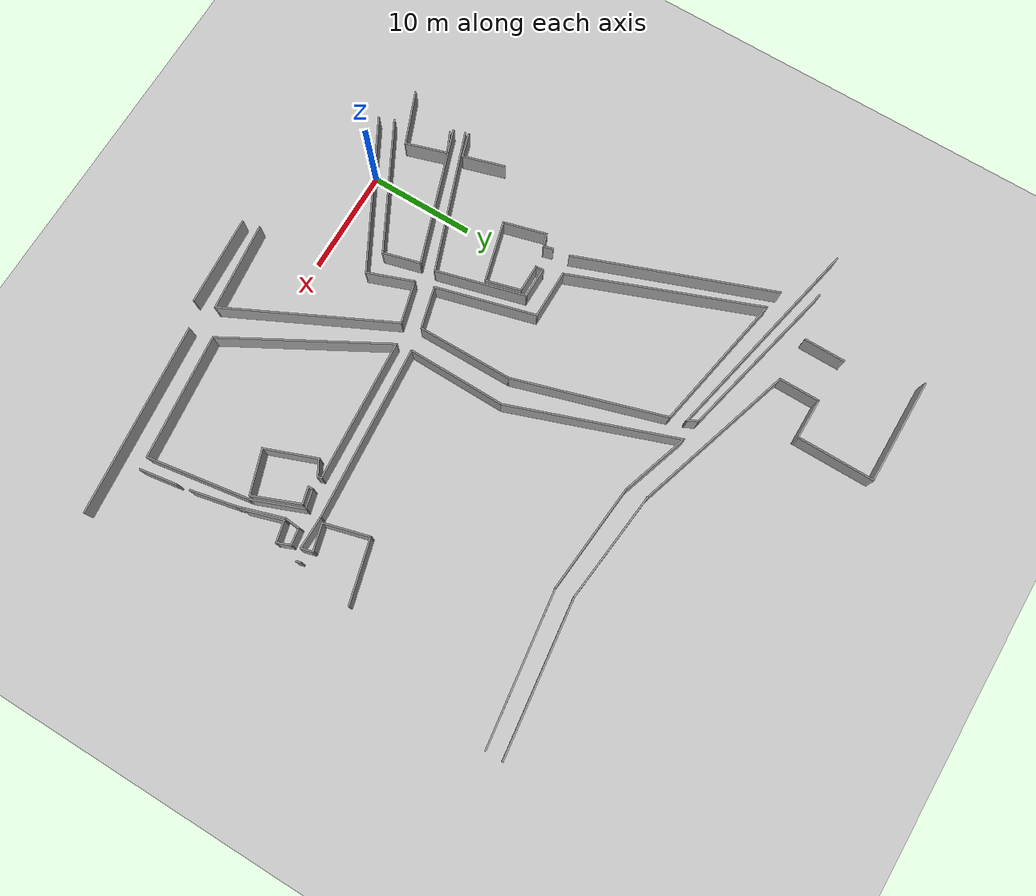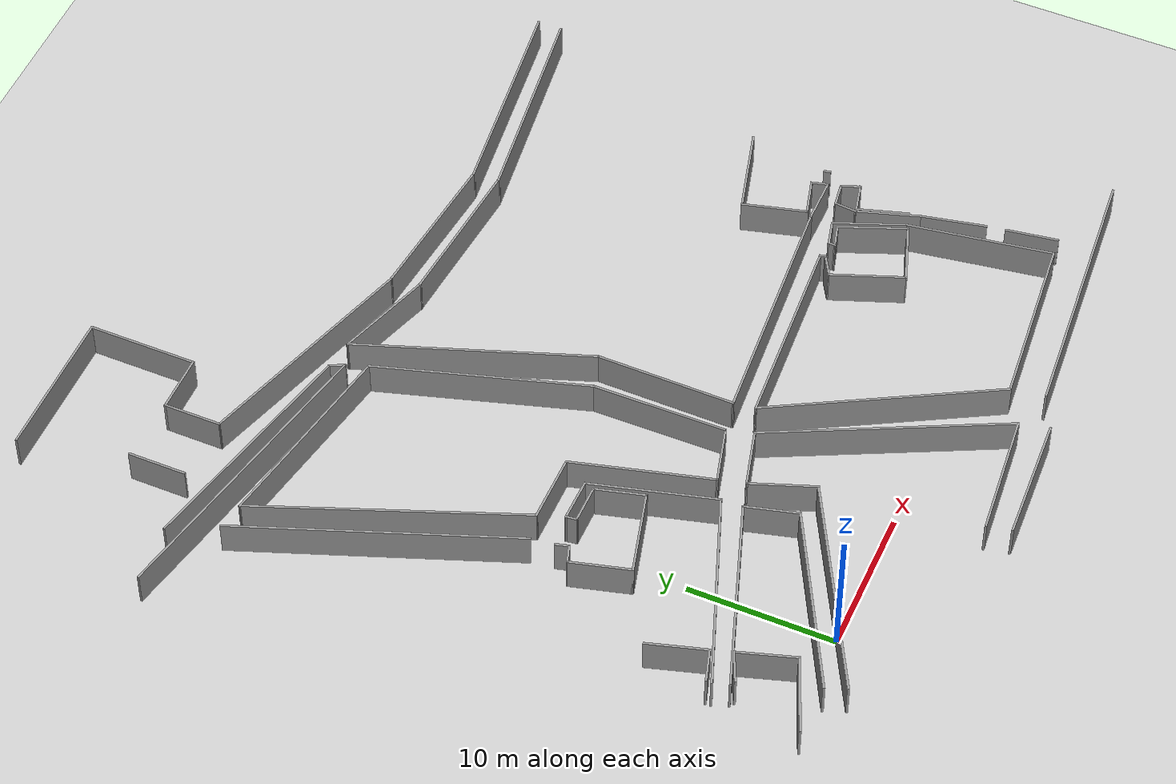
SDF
<sdf version="1.7">
 <world name="default">
  <include><uri>model://sun</uri></include>
  <include><uri>model://ground_plane</uri></include>
  <model name="final_max_v1">
   <pose>-2.52311 0.669104 0 0 -0 0</pose>
   <link name="Wall_112">
    <collision name="Wall_112_Collision">
     <geometry><box><size>4 0.15 2.5</size></box></geometry>
     <pose>0 0 1.25 0 -0 0</pose>
    </collision>
    <visual name="Wall_112_Visual">
     <pose>0 0 1.25 0 -0 0</pose>
     <geometry><box><size>4 0.15 2.5</size></box></geometry>
     <material>
      <script><uri>file://media/materials/scripts/gazebo.material</uri><name>Gazebo/Grey</name></script>
      <ambient>1 1 1 1</ambient>
     </material>
     <meta><layer>0</layer></meta>
    </visual>
    <pose>-3.46937 43.0764 0 0 -0 1.5708</pose>
   </link>
   <link name="Wall_115">
    <collision name="Wall_115_Collision">
     <geometry><box><size>10.25 0.15 2.5</size></box></geometry>
     <pose>0 0 1.25 0 -0 0</pose>
    </collision>
    <visual name="Wall_115_Visual">
     <pose>0 0 1.25 0 -0 0</pose>
     <geometry><box><size>10.25 0.15 2.5</size></box></geometry>
     <material>
      <script><uri>file://media/materials/scripts/gazebo.material</uri><name>Gazebo/Grey</name></script>
      <ambient>1 1 1 1</ambient>
     </material>
     <meta><layer>0</layer></meta>
    </visual>
    <pose>-0.269373 52.1014 0 0 -0 0</pose>
   </link>
   <link name="Wall_116">
    <collision name="Wall_116_Collision">
     <geometry><box><size>7.5 0.15 2.5</size></box></geometry>
     <pose>0 0 1.25 0 -0 0</pose>
    </collision>
    <visual name="Wall_116_Visual">
     <pose>0 0 1.25 0 -0 0</pose>
     <geometry><box><size>7.5 0.15 2.5</size></box></geometry>
     <material>
      <script><uri>file://media/materials/scripts/gazebo.material</uri><name>Gazebo/Grey</name></script>
      <ambient>1 1 1 1</ambient>
     </material>
     <meta><layer>0</layer></meta>
    </visual>
    <pose>4.78063 48.4264 0 0 -0 -1.5708</pose>
   </link>
   <link name="Wall_117">
    <collision name="Wall_117_Collision">
     <geometry><box><size>4 0.15 2.5</size></box></geometry>
     <pose>0 0 1.25 0 -0 0</pose>
    </collision>
    <visual name="Wall_117_Visual">
     <pose>0 0 1.25 0 -0 0</pose>
     <geometry><box><size>4 0.15 2.5</size></box></geometry>
     <material>
      <script><uri>file://media/materials/scripts/gazebo.material</uri><name>Gazebo/Grey</name></script>
      <ambient>1 1 1 1</ambient>
     </material>
     <meta><layer>0</layer></meta>
    </visual>
    <pose>2.85563 44.7514 0 0 -0 3.14159</pose>
   </link>
   <link name="Wall_118">
    <collision name="Wall_118_Collision">
     <geometry><box><size>4 0.15 2.5</size></box></geometry>
     <pose>0 0 1.25 0 -0 0</pose>
    </collision>
    <visual name="Wall_118_Visual">
     <pose>0 0 1.25 0 -0 0</pose>
     <geometry><box><size>4 0.15 2.5</size></box></geometry>
     <material>
      <script><uri>file://media/materials/scripts/gazebo.material</uri><name>Gazebo/Grey</name></script>
      <ambient>1 1 1 1</ambient>
     </material>
     <meta><layer>0</layer></meta>
    </visual>
    <pose>0.930627 42.8264 0 0 -0 -1.5708</pose>
   </link>
   <link name="Wall_119">
    <collision name="Wall_119_Collision">
     <geometry><box><size>16.165 0.15 2.5</size></box></geometry>
     <pose>0 0 1.25 0 -0 0</pose>
    </collision>
    <visual name="Wall_119_Visual">
     <pose>0 0 1.25 0 -0 0</pose>
     <geometry><box><size>16.165 0.15 2.5</size></box></geometry>
     <material>
      <script><uri>file://media/materials/scripts/gazebo.material</uri><name>Gazebo/Grey</name></script>
      <ambient>1 1 1 1</ambient>
     </material>
     <meta><layer>0</layer></meta>
    </visual>
    <pose>8.5693 38.4991 0 0 -0 -0.304697</pose>
   </link>
   <link name="Wall_120">
    <collision name="Wall_120_Collision">
     <geometry><box><size>10.7874 0.15 2.5</size></box></geometry>
     <pose>0 0 1.25 0 -0 0</pose>
    </collision>
    <visual name="Wall_120_Visual">
     <pose>0 0 1.25 0 -0 0</pose>
     <geometry><box><size>10.7874 0.15 2.5</size></box></geometry>
     <material>
      <script><uri>file://media/materials/scripts/gazebo.material</uri><name>Gazebo/Grey</name></script>
      <ambient>1 1 1 1</ambient>
     </material>
     <meta><layer>0</layer></meta>
    </visual>
    <pose>21.498 35.5448 0 0 -0 -0.103972</pose>
   </link>
   <link name="Wall_121">
    <collision name="Wall_121_Collision">
     <geometry><box><size>14.8821 0.15 2.5</size></box></geometry>
     <pose>0 0 1.25 0 -0 0</pose>
    </collision>
    <visual name="Wall_121_Visual">
     <pose>0 0 1.25 0 -0 0</pose>
     <geometry><box><size>14.8821 0.15 2.5</size></box></geometry>
     <material>
      <script><uri>file://media/materials/scripts/gazebo.material</uri><name>Gazebo/Grey</name></script>
      <ambient>1 1 1 1</ambient>
     </material>
     <meta><layer>0</layer></meta>
    </visual>
    <pose>34.102 35.8668 0 0 -0 0.118933</pose>
   </link>
   <link name="Wall_135">
    <collision name="Wall_135_Collision">
     <geometry><box><size>18.5413 0.15 2.5</size></box></geometry>
     <pose>0 0 1.25 0 -0 0</pose>
    </collision>
    <visual name="Wall_135_Visual">
     <pose>0 0 1.25 0 -0 0</pose>
     <geometry><box><size>18.5413 0.15 2.5</size></box></geometry>
     <material>
      <script><uri>file://media/materials/scripts/gazebo.material</uri><name>Gazebo/Grey</name></script>
      <ambient>1 1 1 1</ambient>
     </material>
     <meta><layer>0</layer></meta>
    </visual>
    <pose>33.3077 -5.59592 0 0 -0 0.095189</pose>
   </link>
   <link name="Wall_159">
    <collision name="Wall_159_Collision">
     <geometry><box><size>16.3963 0.15 2.5</size></box></geometry>
     <pose>0 0 1.25 0 -0 0</pose>
    </collision>
    <visual name="Wall_159_Visual">
     <pose>0 0 1.25 0 -0 0</pose>
     <geometry><box><size>16.3963 0.15 2.5</size></box></geometry>
     <material>
      <script><uri>file://media/materials/scripts/gazebo.material</uri><name>Gazebo/Grey</name></script>
      <ambient>1 1 1 1</ambient>
     </material>
     <meta><layer>0</layer></meta>
    </visual>
    <pose>0.113766 38.435 0 0 -0 -0.228497</pose>
   </link>
   <link name="Wall_164">
    <collision name="Wall_164_Collision">
     <geometry><box><size>9.16316 0.15 2.5</size></box></geometry>
     <pose>0 0 1.25 0 -0 0</pose>
    </collision>
    <visual name="Wall_164_Visual">
     <pose>0 0 1.25 0 -0 0</pose>
     <geometry><box><size>9.16316 0.15 2.5</size></box></geometry>
     <material>
      <script><uri>file://media/materials/scripts/gazebo.material</uri><name>Gazebo/Grey</name></script>
      <ambient>1 1 1 1</ambient>
     </material>
     <meta><layer>0</layer></meta>
    </visual>
    <pose>13.3066 15.8045 0 0 -0 -1.56262</pose>
   </link>
   <link name="Wall_167">
    <collision name="Wall_167_Collision">
     <geometry><box><size>4 0.15 2.5</size></box></geometry>
     <pose>0 0 1.25 0 -0 0</pose>
    </collision>
    <visual name="Wall_167_Visual">
     <pose>0 0 1.25 0 -0 0</pose>
     <geometry><box><size>4 0.15 2.5</size></box></geometry>
     <material>
      <script><uri>file://media/materials/scripts/gazebo.material</uri><name>Gazebo/Grey</name></script>
      <ambient>1 1 1 1</ambient>
     </material>
     <meta><layer>0</layer></meta>
    </visual>
    <pose>11.3094 10.7013 0 0 -0 0.261799</pose>
   </link>
   <link name="Wall_169">
    <collision name="Wall_169_Collision">
     <geometry><box><size>9.75 0.15 2.5</size></box></geometry>
     <pose>0 0 1.25 0 -0 0</pose>
    </collision>
    <visual name="Wall_169_Visual">
     <pose>0 0 1.25 0 -0 0</pose>
     <geometry><box><size>9.75 0.15 2.5</size></box></geometry>
     <material>
      <script><uri>file://media/materials/scripts/gazebo.material</uri><name>Gazebo/Grey</name></script>
      <ambient>1 1 1 1</ambient>
     </material>
     <meta><layer>0</layer></meta>
    </visual>
    <pose>8.20764 14.8395 0 0 -0 1.8326</pose>
   </link>
   <link name="Wall_171">
    <collision name="Wall_171_Collision">
     <geometry><box><size>4.75 0.15 2.5</size></box></geometry>
     <pose>0 0 1.25 0 -0 0</pose>
    </collision>
    <visual name="Wall_171_Visual">
     <pose>0 0 1.25 0 -0 0</pose>
     <geometry><box><size>4.75 0.15 2.5</size></box></geometry>
     <material>
      <script><uri>file://media/materials/scripts/gazebo.material</uri><name>Gazebo/Grey</name></script>
      <ambient>1 1 1 1</ambient>
     </material>
     <meta><layer>0</layer></meta>
    </visual>
    <pose>4.66531 19.476 0 0 -0 3.14159</pose>
   </link>
   <link name="Wall_191">
    <collision name="Wall_191_Collision">
     <geometry><box><size>20.8467 0.15 2.5</size></box></geometry>
     <pose>0 0 1.25 0 -0 0</pose>
    </collision>
    <visual name="Wall_191_Visual">
     <pose>0 0 1.25 0 -0 0</pose>
     <geometry><box><size>20.8467 0.15 2.5</size></box></geometry>
     <material>
      <script><uri>file://media/materials/scripts/gazebo.material</uri><name>Gazebo/Grey</name></script>
      <ambient>1 1 1 1</ambient>
     </material>
     <meta><layer>0</layer></meta>
    </visual>
    <pose>-1.63858 37.8537 0 0 -0 -0.210472</pose>
   </link>
   <link name="Wall_193">
    <collision name="Wall_193_Collision">
     <geometry><box><size>1.1617 0.15 2.5</size></box></geometry>
     <pose>0 0 1.25 0 -0 0</pose>
    </collision>
    <visual name="Wall_193_Visual">
     <pose>0 0 1.25 0 -0 0</pose>
     <geometry><box><size>1.1617 0.15 2.5</size></box></geometry>
     <material>
      <script><uri>file://media/materials/scripts/gazebo.material</uri><name>Gazebo/Grey</name></script>
      <ambient>1 1 1 1</ambient>
     </material>
     <meta><layer>0</layer></meta>
    </visual>
    <pose>8.25359 36.1433 0 0 -0 2.03799</pose>
   </link>
   <link name="Wall_211">
    <collision name="Wall_211_Collision">
     <geometry><box><size>14.7253 0.15 2.5</size></box></geometry>
     <pose>0 0 1.25 0 -0 0</pose>
    </collision>
    <visual name="Wall_211_Visual">
     <pose>0 0 1.25 0 -0 0</pose>
     <geometry><box><size>14.7253 0.15 2.5</size></box></geometry>
     <material>
      <script><uri>file://media/materials/scripts/gazebo.material</uri><name>Gazebo/Grey</name></script>
      <ambient>1 1 1 1</ambient>
     </material>
     <meta><layer>0</layer></meta>
    </visual>
    <pose>11.1463 27.2824 0 0 -0 -1.27513</pose>
   </link>
   <link name="Wall_213">
    <collision name="Wall_213_Collision">
     <geometry><box><size>9.53445 0.15 2.5</size></box></geometry>
     <pose>0 0 1.25 0 -0 0</pose>
    </collision>
    <visual name="Wall_213_Visual">
     <pose>0 0 1.25 0 -0 0</pose>
     <geometry><box><size>9.53445 0.15 2.5</size></box></geometry>
     <material>
      <script><uri>file://media/materials/scripts/gazebo.material</uri><name>Gazebo/Grey</name></script>
      <ambient>1 1 1 1</ambient>
     </material>
     <meta><layer>0</layer></meta>
    </visual>
    <pose>15.6009 16.3138 0 0 -0 1.56099</pose>
   </link>
   <link name="Wall_215">
    <collision name="Wall_215_Collision">
     <geometry><box><size>16.389 0.15 2.5</size></box></geometry>
     <pose>0 0 1.25 0 -0 0</pose>
    </collision>
    <visual name="Wall_215_Visual">
     <pose>0 0 1.25 0 -0 0</pose>
     <geometry><box><size>16.389 0.15 2.5</size></box></geometry>
     <material>
      <script><uri>file://media/materials/scripts/gazebo.material</uri><name>Gazebo/Grey</name></script>
      <ambient>1 1 1 1</ambient>
     </material>
     <meta><layer>0</layer></meta>
    </visual>
    <pose>12.8869 28.6418 0 0 -0 1.91763</pose>
   </link>
   <link name="Wall_217">
    <collision name="Wall_217_Collision">
     <geometry><box><size>6.92872 0.15 2.5</size></box></geometry>
     <pose>0 0 1.25 0 -0 0</pose>
    </collision>
    <visual name="Wall_217_Visual">
     <pose>0 0 1.25 0 -0 0</pose>
     <geometry><box><size>6.92872 0.15 2.5</size></box></geometry>
     <material>
      <script><uri>file://media/materials/scripts/gazebo.material</uri><name>Gazebo/Grey</name></script>
      <ambient>1 1 1 1</ambient>
     </material>
     <meta><layer>0</layer></meta>
    </visual>
    <pose>13.3469 35.2198 0 0 -0 -0.317459</pose>
   </link>
   <link name="Wall_219">
    <collision name="Wall_219_Collision">
     <geometry><box><size>10.5866 0.15 2.5</size></box></geometry>
     <pose>0 0 1.25 0 -0 0</pose>
    </collision>
    <visual name="Wall_219_Visual">
     <pose>0 0 1.25 0 -0 0</pose>
     <geometry><box><size>10.5866 0.15 2.5</size></box></geometry>
     <material>
      <script><uri>file://media/materials/scripts/gazebo.material</uri><name>Gazebo/Grey</name></script>
      <ambient>1 1 1 1</ambient>
     </material>
     <meta><layer>0</layer></meta>
    </visual>
    <pose>21.7649 33.7018 0 0 -0 -0.088266</pose>
   </link>
   <link name="Wall_221">
    <collision name="Wall_221_Collision">
     <geometry><box><size>14.7107 0.15 2.5</size></box></geometry>
     <pose>0 0 1.25 0 -0 0</pose>
    </collision>
    <visual name="Wall_221_Visual">
     <pose>0 0 1.25 0 -0 0</pose>
     <geometry><box><size>14.7107 0.15 2.5</size></box></geometry>
     <material>
      <script><uri>file://media/materials/scripts/gazebo.material</uri><name>Gazebo/Grey</name></script>
      <ambient>1 1 1 1</ambient>
     </material>
     <meta><layer>0</layer></meta>
    </visual>
    <pose>34.1849 34.1618 0 0 -0 0.126706</pose>
   </link>
   <link name="Wall_233">
    <collision name="Wall_233_Collision">
     <geometry><box><size>12.0422 0.15 2.5</size></box></geometry>
     <pose>0 0 1.25 0 -0 0</pose>
    </collision>
    <visual name="Wall_233_Visual">
     <pose>0 0 1.25 0 -0 0</pose>
     <geometry><box><size>12.0422 0.15 2.5</size></box></geometry>
     <material>
      <script><uri>file://media/materials/scripts/gazebo.material</uri><name>Gazebo/Grey</name></script>
      <ambient>1 1 1 1</ambient>
     </material>
     <meta><layer>0</layer></meta>
    </visual>
    <pose>29.7422 -3.55323 0 0 -0 0.105489</pose>
   </link>
   <link name="Wall_234">
    <collision name="Wall_234_Collision">
     <geometry><box><size>10.0086 0.15 2.5</size></box></geometry>
     <pose>0 0 1.25 0 -0 0</pose>
    </collision>
    <visual name="Wall_234_Visual">
     <pose>0 0 1.25 0 -0 0</pose>
     <geometry><box><size>10.0086 0.15 2.5</size></box></geometry>
     <material>
      <script><uri>file://media/materials/scripts/gazebo.material</uri><name>Gazebo/Grey</name></script>
      <ambient>1 1 1 1</ambient>
     </material>
     <meta><layer>0</layer></meta>
    </visual>
    <pose>34.8901 1.94242 0 0 -0 1.72666</pose>
   </link>
   <link name="Wall_235">
    <collision name="Wall_235_Collision">
     <geometry><box><size>5.08472 0.15 2.5</size></box></geometry>
     <pose>0 0 1.25 0 -0 0</pose>
    </collision>
    <visual name="Wall_235_Visual">
     <pose>0 0 1.25 0 -0 0</pose>
     <geometry><box><size>5.08472 0.15 2.5</size></box></geometry>
     <material>
      <script><uri>file://media/materials/scripts/gazebo.material</uri><name>Gazebo/Grey</name></script>
      <ambient>1 1 1 1</ambient>
     </material>
     <meta><layer>0</layer></meta>
    </visual>
    <pose>33.2205 9.10764 0 0 -0 1.94607</pose>
   </link>
   <link name="Wall_237">
    <collision name="Wall_237_Collision">
     <geometry><box><size>16.5284 0.15 2.5</size></box></geometry>
     <pose>0 0 1.25 0 -0 0</pose>
    </collision>
    <visual name="Wall_237_Visual">
     <pose>0 0 1.25 0 -0 0</pose>
     <geometry><box><size>16.5284 0.15 2.5</size></box></geometry>
     <material>
      <script><uri>file://media/materials/scripts/gazebo.material</uri><name>Gazebo/Grey</name></script>
      <ambient>1 1 1 1</ambient>
     </material>
     <meta><layer>0</layer></meta>
    </visual>
    <pose>19.7248 2.9859 0 0 -0 -1.06535</pose>
   </link>
   <link name="Wall_240">
    <collision name="Wall_240_Collision">
     <geometry><box><size>16.9278 0.15 2.5</size></box></geometry>
     <pose>0 0 1.25 0 -0 0</pose>
    </collision>
    <visual name="Wall_240_Visual">
     <pose>0 0 1.25 0 -0 0</pose>
     <geometry><box><size>16.9278 0.15 2.5</size></box></geometry>
     <material>
      <script><uri>file://media/materials/scripts/gazebo.material</uri><name>Gazebo/Grey</name></script>
      <ambient>1 1 1 1</ambient>
     </material>
     <meta><layer>0</layer></meta>
    </visual>
    <pose>23.9191 12.2642 0 0 -0 0.076646</pose>
   </link>
   <link name="Wall_241">
    <collision name="Wall_241_Collision">
     <geometry><box><size>3.25 0.15 2.5</size></box></geometry>
     <pose>0 0 1.25 0 -0 0</pose>
    </collision>
    <visual name="Wall_241_Visual">
     <pose>0 0 1.25 0 -0 0</pose>
     <geometry><box><size>3.25 0.15 2.5</size></box></geometry>
     <material>
      <script><uri>file://media/materials/scripts/gazebo.material</uri><name>Gazebo/Grey</name></script>
      <ambient>1 1 1 1</ambient>
     </material>
     <meta><layer>0</layer></meta>
    </visual>
    <pose>33.8334 12.9065 0 0 -0 0</pose>
   </link>
   <link name="Wall_242">
    <collision name="Wall_242_Collision">
     <geometry><box><size>1.25 0.15 2.5</size></box></geometry>
     <pose>0 0 1.25 0 -0 0</pose>
    </collision>
    <visual name="Wall_242_Visual">
     <pose>0 0 1.25 0 -0 0</pose>
     <geometry><box><size>1.25 0.15 2.5</size></box></geometry>
     <material>
      <script><uri>file://media/materials/scripts/gazebo.material</uri><name>Gazebo/Grey</name></script>
      <ambient>1 1 1 1</ambient>
     </material>
     <meta><layer>0</layer></meta>
    </visual>
    <pose>35.241 13.4378 0 0 -0 1.8326</pose>
   </link>
   <link name="Wall_243">
    <collision name="Wall_243_Collision">
     <geometry><box><size>2.75 0.15 2.5</size></box></geometry>
     <pose>0 0 1.25 0 -0 0</pose>
    </collision>
    <visual name="Wall_243_Visual">
     <pose>0 0 1.25 0 -0 0</pose>
     <geometry><box><size>2.75 0.15 2.5</size></box></geometry>
     <material>
      <script><uri>file://media/materials/scripts/gazebo.material</uri><name>Gazebo/Grey</name></script>
      <ambient>1 1 1 1</ambient>
     </material>
     <meta><layer>0</layer></meta>
    </visual>
    <pose>33.843 13.6326 0 0 -0 -2.87979</pose>
   </link>
   <link name="Wall_244">
    <collision name="Wall_244_Collision">
     <geometry><box><size>4.5 0.15 2.5</size></box></geometry>
     <pose>0 0 1.25 0 -0 0</pose>
    </collision>
    <visual name="Wall_244_Visual">
     <pose>0 0 1.25 0 -0 0</pose>
     <geometry><box><size>4.5 0.15 2.5</size></box></geometry>
     <material>
      <script><uri>file://media/materials/scripts/gazebo.material</uri><name>Gazebo/Grey</name></script>
      <ambient>1 1 1 1</ambient>
     </material>
     <meta><layer>0</layer></meta>
    </visual>
    <pose>32.0243 15.397 0 0 -0 1.8326</pose>
   </link>
   <link name="Wall_245">
    <collision name="Wall_245_Collision">
     <geometry><box><size>6.25 0.15 2.5</size></box></geometry>
     <pose>0 0 1.25 0 -0 0</pose>
    </collision>
    <visual name="Wall_245_Visual">
     <pose>0 0 1.25 0 -0 0</pose>
     <geometry><box><size>6.25 0.15 2.5</size></box></geometry>
     <material>
      <script><uri>file://media/materials/scripts/gazebo.material</uri><name>Gazebo/Grey</name></script>
      <ambient>1 1 1 1</ambient>
     </material>
     <meta><layer>0</layer></meta>
    </visual>
    <pose>34.4075 18.2873 0 0 -0 0.261799</pose>
   </link>
   <link name="Wall_248">
    <collision name="Wall_248_Collision">
     <geometry><box><size>0.5 0.15 2.5</size></box></geometry>
     <pose>0 0 1.25 0 -0 0</pose>
    </collision>
    <visual name="Wall_248_Visual">
     <pose>0 0 1.25 0 -0 0</pose>
     <geometry><box><size>0.5 0.15 2.5</size></box></geometry>
     <material>
      <script><uri>file://media/materials/scripts/gazebo.material</uri><name>Gazebo/Grey</name></script>
      <ambient>1 1 1 1</ambient>
     </material>
     <meta><layer>0</layer></meta>
    </visual>
    <pose>36.4489 13.3732 0 0 -0 -1.309</pose>
   </link>
   <link name="Wall_293">
    <collision name="Wall_293_Collision">
     <geometry><box><size>3.61267 0.15 2.5</size></box></geometry>
     <pose>0 0 1.25 0 -0 0</pose>
    </collision>
    <visual name="Wall_293_Visual">
     <pose>0 0 1.25 0 -0 0</pose>
     <geometry><box><size>3.61267 0.15 2.5</size></box></geometry>
     <material>
      <script><uri>file://media/materials/scripts/gazebo.material</uri><name>Gazebo/Grey</name></script>
      <ambient>1 1 1 1</ambient>
     </material>
     <meta><layer>0</layer></meta>
    </visual>
    <pose>34.5878 8.7186 0 0 -0 1.87057</pose>
   </link>
   <link name="Wall_294">
    <collision name="Wall_294_Collision">
     <geometry><box><size>2.19244 0.15 2.5</size></box></geometry>
     <pose>0 0 1.25 0 -0 0</pose>
    </collision>
    <visual name="Wall_294_Visual">
     <pose>0 0 1.25 0 -0 0</pose>
     <geometry><box><size>2.19244 0.15 2.5</size></box></geometry>
     <material>
      <script><uri>file://media/materials/scripts/gazebo.material</uri><name>Gazebo/Grey</name></script>
      <ambient>1 1 1 1</ambient>
     </material>
     <meta><layer>0</layer></meta>
    </visual>
    <pose>35.069 10.6133 0 0 -0 0.237836</pose>
   </link>
   <link name="Wall_295">
    <collision name="Wall_295_Collision">
     <geometry><box><size>1.44567 0.15 2.5</size></box></geometry>
     <pose>0 0 1.25 0 -0 0</pose>
    </collision>
    <visual name="Wall_295_Visual">
     <pose>0 0 1.25 0 -0 0</pose>
     <geometry><box><size>1.44567 0.15 2.5</size></box></geometry>
     <material>
      <script><uri>file://media/materials/scripts/gazebo.material</uri><name>Gazebo/Grey</name></script>
      <ambient>1 1 1 1</ambient>
     </material>
     <meta><layer>0</layer></meta>
    </visual>
    <pose>35.8208 11.4554 0 0 -0 1.9513</pose>
   </link>
   <link name="Wall_296">
    <collision name="Wall_296_Collision">
     <geometry><box><size>1.7323 0.15 2.5</size></box></geometry>
     <pose>0 0 1.25 0 -0 0</pose>
    </collision>
    <visual name="Wall_296_Visual">
     <pose>0 0 1.25 0 -0 0</pose>
     <geometry><box><size>1.7323 0.15 2.5</size></box></geometry>
     <material>
      <script><uri>file://media/materials/scripts/gazebo.material</uri><name>Gazebo/Grey</name></script>
      <ambient>1 1 1 1</ambient>
     </material>
     <meta><layer>0</layer></meta>
    </visual>
    <pose>34.7983 11.9366 0 0 -0 -2.98894</pose>
   </link>
   <link name="Wall_297">
    <collision name="Wall_297_Collision">
     <geometry><box><size>1.5986 0.15 2.5</size></box></geometry>
     <pose>0 0 1.25 0 -0 0</pose>
    </collision>
    <visual name="Wall_297_Visual">
     <pose>0 0 1.25 0 -0 0</pose>
     <geometry><box><size>1.5986 0.15 2.5</size></box></geometry>
     <material>
      <script><uri>file://media/materials/scripts/gazebo.material</uri><name>Gazebo/Grey</name></script>
      <ambient>1 1 1 1</ambient>
     </material>
     <meta><layer>0</layer></meta>
    </visual>
    <pose>33.9562 11.0945 0 0 -0 -1.65394</pose>
   </link>
   <link name="Wall_298">
    <collision name="Wall_298_Collision">
     <geometry><box><size>4.5062 0.15 2.5</size></box></geometry>
     <pose>0 0 1.25 0 -0 0</pose>
    </collision>
    <visual name="Wall_298_Visual">
     <pose>0 0 1.25 0 -0 0</pose>
     <geometry><box><size>4.5062 0.15 2.5</size></box></geometry>
     <material>
      <script><uri>file://media/materials/scripts/gazebo.material</uri><name>Gazebo/Grey</name></script>
      <ambient>1 1 1 1</ambient>
     </material>
     <meta><layer>0</layer></meta>
    </visual>
    <pose>34.5577 8.29755 0 0 -0 -1.26215</pose>
   </link>
   <link name="Wall_309">
    <collision name="Wall_309_Collision">
     <geometry><box><size>3.61438 0.15 2.5</size></box></geometry>
     <pose>0 0 1.25 0 -0 0</pose>
    </collision>
    <visual name="Wall_309_Visual">
     <pose>0 0 1.25 0 -0 0</pose>
     <geometry><box><size>3.61438 0.15 2.5</size></box></geometry>
     <material>
      <script><uri>file://media/materials/scripts/gazebo.material</uri><name>Gazebo/Grey</name></script>
      <ambient>1 1 1 1</ambient>
     </material>
     <meta><layer>0</layer></meta>
    </visual>
    <pose>36.5953 -1.09059 0 0 -0 -1.41679</pose>
   </link>
   <link name="Wall_318">
    <collision name="Wall_318_Collision">
     <geometry><box><size>4.50017 0.15 2.5</size></box></geometry>
     <pose>0 0 1.25 0 -0 0</pose>
    </collision>
    <visual name="Wall_318_Visual">
     <pose>0 0 1.25 0 -0 0</pose>
     <geometry><box><size>4.50017 0.15 2.5</size></box></geometry>
     <material>
      <script><uri>file://media/materials/scripts/gazebo.material</uri><name>Gazebo/Grey</name></script>
      <ambient>1 1 1 1</ambient>
     </material>
     <meta><layer>0</layer></meta>
    </visual>
    <pose>35.6697 4.09443 0 0 -0 1.77936</pose>
   </link>
   <link name="Wall_335">
    <collision name="Wall_335_Collision">
     <geometry><box><size>4.16566 0.15 2.5</size></box></geometry>
     <pose>0 0 1.25 0 -0 0</pose>
    </collision>
    <visual name="Wall_335_Visual">
     <pose>0 0 1.25 0 -0 0</pose>
     <geometry><box><size>4.16566 0.15 2.5</size></box></geometry>
     <material>
      <script><uri>file://media/materials/scripts/gazebo.material</uri><name>Gazebo/Grey</name></script>
      <ambient>1 1 1 1</ambient>
     </material>
     <meta><layer>0</layer></meta>
    </visual>
    <pose>-3.35798 7.58284 0 0 -0 -1.28221</pose>
   </link>
   <link name="Wall_336">
    <collision name="Wall_336_Collision">
     <geometry><box><size>2.41423 0.15 2.5</size></box></geometry>
     <pose>0 0 1.25 0 -0 0</pose>
    </collision>
    <visual name="Wall_336_Visual">
     <pose>0 0 1.25 0 -0 0</pose>
     <geometry><box><size>2.41423 0.15 2.5</size></box></geometry>
     <material>
      <script><uri>file://media/materials/scripts/gazebo.material</uri><name>Gazebo/Grey</name></script>
      <ambient>1 1 1 1</ambient>
     </material>
     <meta><layer>0</layer></meta>
    </visual>
    <pose>-3.86926 5.32722 0 0 -0 -2.84505</pose>
   </link>
   <link name="Wall_344">
    <collision name="Wall_344_Collision">
     <geometry><box><size>5.45315 0.15 2.5</size></box></geometry>
     <pose>0 0 1.25 0 -0 0</pose>
    </collision>
    <visual name="Wall_344_Visual">
     <pose>0 0 1.25 0 -0 0</pose>
     <geometry><box><size>5.45315 0.15 2.5</size></box></geometry>
     <material>
      <script><uri>file://media/materials/scripts/gazebo.material</uri><name>Gazebo/Grey</name></script>
      <ambient>1 1 1 1</ambient>
     </material>
     <meta><layer>0</layer></meta>
    </visual>
    <pose>-3.5957 -0.553775 0 0 -0 0.384169</pose>
   </link>
   <link name="Wall_345">
    <collision name="Wall_345_Collision">
     <geometry><box><size>4.15324 0.15 2.5</size></box></geometry>
     <pose>0 0 1.25 0 -0 0</pose>
    </collision>
    <visual name="Wall_345_Visual">
     <pose>0 0 1.25 0 -0 0</pose>
     <geometry><box><size>4.15324 0.15 2.5</size></box></geometry>
     <material>
      <script><uri>file://media/materials/scripts/gazebo.material</uri><name>Gazebo/Grey</name></script>
      <ambient>1 1 1 1</ambient>
     </material>
     <meta><layer>0</layer></meta>
    </visual>
    <pose>-1.7389 2.34911 0 0 -0 1.87602</pose>
   </link>
   <link name="Wall_354">
    <collision name="Wall_354_Collision">
     <geometry><box><size>2.27975 0.15 2.5</size></box></geometry>
     <pose>0 0 1.25 0 -0 0</pose>
    </collision>
    <visual name="Wall_354_Visual">
     <pose>0 0 1.25 0 -0 0</pose>
     <geometry><box><size>2.27975 0.15 2.5</size></box></geometry>
     <material>
      <script><uri>file://media/materials/scripts/gazebo.material</uri><name>Gazebo/Grey</name></script>
      <ambient>1 1 1 1</ambient>
     </material>
     <meta><layer>0</layer></meta>
    </visual>
    <pose>-3.30803 3.81363 0 0 -0 -2.7109</pose>
   </link>
   <link name="Wall_372">
    <collision name="Wall_372_Collision">
     <geometry><box><size>14.0321 0.15 2.5</size></box></geometry>
     <pose>0 0 1.25 0 -0 0</pose>
    </collision>
    <visual name="Wall_372_Visual">
     <pose>0 0 1.25 0 -0 0</pose>
     <geometry><box><size>14.0321 0.15 2.5</size></box></geometry>
     <material>
      <script><uri>file://media/materials/scripts/gazebo.material</uri><name>Gazebo/Grey</name></script>
      <ambient>1 1 1 1</ambient>
     </material>
     <meta><layer>0</layer></meta>
    </visual>
    <pose>1.57832 7.01954 0 0 -0 0.351268</pose>
   </link>
   <link name="Wall_374">
    <collision name="Wall_374_Collision">
     <geometry><box><size>8.75 0.15 2.5</size></box></geometry>
     <pose>0 0 1.25 0 -0 0</pose>
    </collision>
    <visual name="Wall_374_Visual">
     <pose>0 0 1.25 0 -0 0</pose>
     <geometry><box><size>8.75 0.15 2.5</size></box></geometry>
     <material>
      <script><uri>file://media/materials/scripts/gazebo.material</uri><name>Gazebo/Grey</name></script>
      <ambient>1 1 1 1</ambient>
     </material>
     <meta><layer>0</layer></meta>
    </visual>
    <pose>6.98261 13.5614 0 0 -0 1.8326</pose>
   </link>
   <link name="Wall_378">
    <collision name="Wall_378_Collision">
     <geometry><box><size>18.7028 0.15 2.5</size></box></geometry>
     <pose>0 0 1.25 0 -0 0</pose>
    </collision>
    <visual name="Wall_378_Visual">
     <pose>0 0 1.25 0 -0 0</pose>
     <geometry><box><size>18.7028 0.15 2.5</size></box></geometry>
     <material>
      <script><uri>file://media/materials/scripts/gazebo.material</uri><name>Gazebo/Grey</name></script>
      <ambient>1 1 1 1</ambient>
     </material>
     <meta><layer>0</layer></meta>
    </visual>
    <pose>-1.00084 28.1201 0 0 -0 1.94215</pose>
   </link>
   <link name="Wall_379">
    <collision name="Wall_379_Collision">
     <geometry><box><size>13.7731 0.15 2.5</size></box></geometry>
     <pose>0 0 1.25 0 -0 0</pose>
    </collision>
    <visual name="Wall_379_Visual">
     <pose>0 0 1.25 0 -0 0</pose>
     <geometry><box><size>13.7731 0.15 2.5</size></box></geometry>
     <material>
      <script><uri>file://media/materials/scripts/gazebo.material</uri><name>Gazebo/Grey</name></script>
      <ambient>1 1 1 1</ambient>
     </material>
     <meta><layer>0</layer></meta>
    </visual>
    <pose>2.32793 35.509 0 0 -0 -0.18533</pose>
   </link>
   <link name="Wall_383">
    <collision name="Wall_383_Collision">
     <geometry><box><size>19.4012 0.15 2.5</size></box></geometry>
     <pose>0 0 1.25 0 -0 0</pose>
    </collision>
    <visual name="Wall_383_Visual">
     <pose>0 0 1.25 0 -0 0</pose>
     <geometry><box><size>19.4012 0.15 2.5</size></box></geometry>
     <material>
      <script><uri>file://media/materials/scripts/gazebo.material</uri><name>Gazebo/Grey</name></script>
      <ambient>1 1 1 1</ambient>
     </material>
     <meta><layer>0</layer></meta>
    </visual>
    <pose>-2.84755 28.1393 0 0 -0 -1.21147</pose>
   </link>
   <link name="Wall_453">
    <collision name="Wall_453_Collision">
     <geometry><box><size>13.3527 0.15 2.5</size></box></geometry>
     <pose>0 0 1.25 0 -0 0</pose>
    </collision>
    <visual name="Wall_453_Visual">
     <pose>0 0 1.25 0 -0 0</pose>
     <geometry><box><size>13.3527 0.15 2.5</size></box></geometry>
     <material>
      <script><uri>file://media/materials/scripts/gazebo.material</uri><name>Gazebo/Grey</name></script>
      <ambient>1 1 1 1</ambient>
     </material>
     <meta><layer>0</layer></meta>
    </visual>
    <pose>3.23877 1.36715 0 0 -0 0.485432</pose>
   </link>
   <link name="Wall_454">
    <collision name="Wall_454_Collision">
     <geometry><box><size>3.75 0.15 2.5</size></box></geometry>
     <pose>0 0 1.25 0 -0 0</pose>
    </collision>
    <visual name="Wall_454_Visual">
     <pose>0 0 1.25 0 -0 0</pose>
     <geometry><box><size>3.75 0.15 2.5</size></box></geometry>
     <material>
      <script><uri>file://media/materials/scripts/gazebo.material</uri><name>Gazebo/Grey</name></script>
      <ambient>1 1 1 1</ambient>
     </material>
     <meta><layer>0</layer></meta>
    </visual>
    <pose>8.61161 6.18595 0 0 -0 1.8326</pose>
   </link>
   <link name="Wall_455">
    <collision name="Wall_455_Collision">
     <geometry><box><size>13.5834 0.15 2.5</size></box></geometry>
     <pose>0 0 1.25 0 -0 0</pose>
    </collision>
    <visual name="Wall_455_Visual">
     <pose>0 0 1.25 0 -0 0</pose>
     <geometry><box><size>13.5834 0.15 2.5</size></box></geometry>
     <material>
      <script><uri>file://media/materials/scripts/gazebo.material</uri><name>Gazebo/Grey</name></script>
      <ambient>1 1 1 1</ambient>
     </material>
     <meta><layer>0</layer></meta>
    </visual>
    <pose>1.79257 5.74485 0 0 -0 -2.81108</pose>
   </link>
   <link name="Wall_473">
    <collision name="Wall_473_Collision">
     <geometry><box><size>4.25 0.15 2.5</size></box></geometry>
     <pose>0 0 1.25 0 -0 0</pose>
    </collision>
    <visual name="Wall_473_Visual">
     <pose>0 0 1.25 0 -0 0</pose>
     <geometry><box><size>4.25 0.15 2.5</size></box></geometry>
     <material>
      <script><uri>file://media/materials/scripts/gazebo.material</uri><name>Gazebo/Grey</name></script>
      <ambient>1 1 1 1</ambient>
     </material>
     <meta><layer>0</layer></meta>
    </visual>
    <pose>11.8924 8.9301 0 0 -0 0.261799</pose>
   </link>
   <link name="Wall_475">
    <collision name="Wall_475_Collision">
     <geometry><box><size>16.9261 0.15 2.5</size></box></geometry>
     <pose>0 0 1.25 0 -0 0</pose>
    </collision>
    <visual name="Wall_475_Visual">
     <pose>0 0 1.25 0 -0 0</pose>
     <geometry><box><size>16.9261 0.15 2.5</size></box></geometry>
     <material>
      <script><uri>file://media/materials/scripts/gazebo.material</uri><name>Gazebo/Grey</name></script>
      <ambient>1 1 1 1</ambient>
     </material>
     <meta><layer>0</layer></meta>
    </visual>
    <pose>17.5605 1.92686 0 0 -0 -1.11557</pose>
   </link>
   <link name="Wall_542">
    <collision name="Wall_542_Collision">
     <geometry><box><size>8.70937 0.15 2.5</size></box></geometry>
     <pose>0 0 1.25 0 -0 0</pose>
    </collision>
    <visual name="Wall_542_Visual">
     <pose>0 0 1.25 0 -0 0</pose>
     <geometry><box><size>8.70937 0.15 2.5</size></box></geometry>
     <material>
      <script><uri>file://media/materials/scripts/gazebo.material</uri><name>Gazebo/Grey</name></script>
      <ambient>1 1 1 1</ambient>
     </material>
     <meta><layer>0</layer></meta>
    </visual>
    <pose>17.4338 -7.88069 0 0 -0 0.062419</pose>
   </link>
   <link name="Wall_549">
    <collision name="Wall_549_Collision">
     <geometry><box><size>8.61735 0.15 2.5</size></box></geometry>
     <pose>0 0 1.25 0 -0 0</pose>
    </collision>
    <visual name="Wall_549_Visual">
     <pose>0 0 1.25 0 -0 0</pose>
     <geometry><box><size>8.61735 0.15 2.5</size></box></geometry>
     <material>
      <script><uri>file://media/materials/scripts/gazebo.material</uri><name>Gazebo/Grey</name></script>
      <ambient>1 1 1 1</ambient>
     </material>
     <meta><layer>0</layer></meta>
    </visual>
    <pose>17.0384 -6.05442 0 0 -0 0.105888</pose>
   </link>
   <link name="Wall_607">
    <collision name="Wall_607_Collision">
     <geometry><box><size>15.5213 0.15 2.5</size></box></geometry>
     <pose>0 0 1.25 0 -0 0</pose>
    </collision>
    <visual name="Wall_607_Visual">
     <pose>0 0 1.25 0 -0 0</pose>
     <geometry><box><size>15.5213 0.15 2.5</size></box></geometry>
     <material>
      <script><uri>file://media/materials/scripts/gazebo.material</uri><name>Gazebo/Grey</name></script>
      <ambient>1 1 1 1</ambient>
     </material>
     <meta><layer>0</layer></meta>
    </visual>
    <pose>4.70413 0.540875 0 0 -0 0.492919</pose>
   </link>
   <link name="Wall_608">
    <collision name="Wall_608_Collision">
     <geometry><box><size>4.65169 0.15 2.5</size></box></geometry>
     <pose>0 0 1.25 0 -0 0</pose>
    </collision>
    <visual name="Wall_608_Visual">
     <pose>0 0 1.25 0 -0 0</pose>
     <geometry><box><size>4.65169 0.15 2.5</size></box></geometry>
     <material>
      <script><uri>file://media/materials/scripts/gazebo.material</uri><name>Gazebo/Grey</name></script>
      <ambient>1 1 1 1</ambient>
     </material>
     <meta><layer>0</layer></meta>
    </visual>
    <pose>10.6936 6.28862 0 0 -0 1.92528</pose>
   </link>
   <link name="Wall_612">
    <collision name="Wall_612_Collision">
     <geometry><box><size>3.03133 0.15 2.5</size></box></geometry>
     <pose>0 0 1.25 0 -0 0</pose>
    </collision>
    <visual name="Wall_612_Visual">
     <pose>0 0 1.25 0 -0 0</pose>
     <geometry><box><size>3.03133 0.15 2.5</size></box></geometry>
     <material>
      <script><uri>file://media/materials/scripts/gazebo.material</uri><name>Gazebo/Grey</name></script>
      <ambient>1 1 1 1</ambient>
     </material>
     <meta><layer>0</layer></meta>
    </visual>
    <pose>4.42906 17.7261 0 0 -0 -0.007849</pose>
   </link>
   <link name="Wall_614">
    <collision name="Wall_614_Collision">
     <geometry><box><size>1 0.15 2.5</size></box></geometry>
     <pose>0 0 1.25 0 -0 0</pose>
    </collision>
    <visual name="Wall_614_Visual">
     <pose>0 0 1.25 0 -0 0</pose>
     <geometry><box><size>1 0.15 2.5</size></box></geometry>
     <material>
      <script><uri>file://media/materials/scripts/gazebo.material</uri><name>Gazebo/Grey</name></script>
      <ambient>1 1 1 1</ambient>
     </material>
     <meta><layer>0</layer></meta>
    </visual>
    <pose>0.877987 17.0578 0 0 -0 -1.309</pose>
   </link>
   <link name="Wall_615">
    <collision name="Wall_615_Collision">
     <geometry><box><size>1.37575 0.15 2.5</size></box></geometry>
     <pose>0 0 1.25 0 -0 0</pose>
    </collision>
    <visual name="Wall_615_Visual">
     <pose>0 0 1.25 0 -0 0</pose>
     <geometry><box><size>1.37575 0.15 2.5</size></box></geometry>
     <material>
      <script><uri>file://media/materials/scripts/gazebo.material</uri><name>Gazebo/Grey</name></script>
      <ambient>1 1 1 1</ambient>
     </material>
     <meta><layer>0</layer></meta>
    </visual>
    <pose>0.406981 16.4522 0 0 -0 -2.81769</pose>
   </link>
   <link name="Wall_616">
    <collision name="Wall_616_Collision">
     <geometry><box><size>4.25 0.15 2.5</size></box></geometry>
     <pose>0 0 1.25 0 -0 0</pose>
    </collision>
    <visual name="Wall_616_Visual">
     <pose>0 0 1.25 0 -0 0</pose>
     <geometry><box><size>4.25 0.15 2.5</size></box></geometry>
     <material>
      <script><uri>file://media/materials/scripts/gazebo.material</uri><name>Gazebo/Grey</name></script>
      <ambient>1 1 1 1</ambient>
     </material>
     <meta><layer>0</layer></meta>
    </visual>
    <pose>0.356556 14.277 0 0 -0 -1.309</pose>
   </link>
   <link name="Wall_617">
    <collision name="Wall_617_Collision">
     <geometry><box><size>6 0.15 2.5</size></box></geometry>
     <pose>0 0 1.25 0 -0 0</pose>
    </collision>
    <visual name="Wall_617_Visual">
     <pose>0 0 1.25 0 -0 0</pose>
     <geometry><box><size>6 0.15 2.5</size></box></geometry>
     <material>
      <script><uri>file://media/materials/scripts/gazebo.material</uri><name>Gazebo/Grey</name></script>
      <ambient>1 1 1 1</ambient>
     </material>
     <meta><layer>0</layer></meta>
    </visual>
    <pose>3.71247 13.0539 0 0 -0 0.261799</pose>
   </link>
   <link name="Wall_618">
    <collision name="Wall_618_Collision">
     <geometry><box><size>3.5 0.15 2.5</size></box></geometry>
     <pose>0 0 1.25 0 -0 0</pose>
    </collision>
    <visual name="Wall_618_Visual">
     <pose>0 0 1.25 0 -0 0</pose>
     <geometry><box><size>3.5 0.15 2.5</size></box></geometry>
     <material>
      <script><uri>file://media/materials/scripts/gazebo.material</uri><name>Gazebo/Grey</name></script>
      <ambient>1 1 1 1</ambient>
     </material>
     <meta><layer>0</layer></meta>
    </visual>
    <pose>6.10428 15.4289 0 0 -0 1.8326</pose>
   </link>
   <link name="Wall_619">
    <collision name="Wall_619_Collision">
     <geometry><box><size>2.75 0.15 2.5</size></box></geometry>
     <pose>0 0 1.25 0 -0 0</pose>
    </collision>
    <visual name="Wall_619_Visual">
     <pose>0 0 1.25 0 -0 0</pose>
     <geometry><box><size>2.75 0.15 2.5</size></box></geometry>
     <material>
      <script><uri>file://media/materials/scripts/gazebo.material</uri><name>Gazebo/Grey</name></script>
      <ambient>1 1 1 1</ambient>
     </material>
     <meta><layer>0</layer></meta>
    </visual>
    <pose>4.37076 17.0468 0 0 -0 3.14159</pose>
   </link>
   <link name="Wall_620">
    <collision name="Wall_620_Collision">
     <geometry><box><size>0.845545 0.15 2.5</size></box></geometry>
     <pose>0 0 1.25 0 -0 0</pose>
    </collision>
    <visual name="Wall_620_Visual">
     <pose>0 0 1.25 0 -0 0</pose>
     <geometry><box><size>0.845545 0.15 2.5</size></box></geometry>
     <material>
      <script><uri>file://media/materials/scripts/gazebo.material</uri><name>Gazebo/Grey</name></script>
      <ambient>1 1 1 1</ambient>
     </material>
     <meta><layer>0</layer></meta>
    </visual>
    <pose>3.0296 17.3921 0 0 -0 1.68941</pose>
   </link>
   <link name="Wall_688">
    <collision name="Wall_688_Collision">
     <geometry><box><size>1.94951 0.15 2.5</size></box></geometry>
     <pose>0 0 1.25 0 -0 0</pose>
    </collision>
    <visual name="Wall_688_Visual">
     <pose>0 0 1.25 0 -0 0</pose>
     <geometry><box><size>1.94951 0.15 2.5</size></box></geometry>
     <material>
      <script><uri>file://media/materials/scripts/gazebo.material</uri><name>Gazebo/Grey</name></script>
      <ambient>1 1 1 1</ambient>
     </material>
     <meta><layer>0</layer></meta>
    </visual>
    <pose>31.4453 11.1772 0 0 -0 0.253984</pose>
   </link>
   <link name="Wall_690">
    <collision name="Wall_690_Collision">
     <geometry><box><size>13.758 0.15 2.5</size></box></geometry>
     <pose>0 0 1.25 0 -0 0</pose>
    </collision>
    <visual name="Wall_690_Visual">
     <pose>0 0 1.25 0 -0 0</pose>
     <geometry><box><size>13.758 0.15 2.5</size></box></geometry>
     <material>
      <script><uri>file://media/materials/scripts/gazebo.material</uri><name>Gazebo/Grey</name></script>
      <ambient>1 1 1 1</ambient>
     </material>
     <meta><layer>0</layer></meta>
    </visual>
    <pose>22.5476 10.6175 0 0 -0 0.068598</pose>
   </link>
   <link name="Wall_691">
    <collision name="Wall_691_Collision">
     <geometry><box><size>0.5 0.15 2.5</size></box></geometry>
     <pose>0 0 1.25 0 -0 0</pose>
    </collision>
    <visual name="Wall_691_Visual">
     <pose>0 0 1.25 0 -0 0</pose>
     <geometry><box><size>0.5 0.15 2.5</size></box></geometry>
     <material>
      <script><uri>file://media/materials/scripts/gazebo.material</uri><name>Gazebo/Grey</name></script>
      <ambient>1 1 1 1</ambient>
     </material>
     <meta><layer>0</layer></meta>
    </visual>
    <pose>29.3809 10.9148 0 0 -0 -1.309</pose>
   </link>
   <link name="Wall_692">
    <collision name="Wall_692_Collision">
     <geometry><box><size>1.75 0.15 2.5</size></box></geometry>
     <pose>0 0 1.25 0 -0 0</pose>
    </collision>
    <visual name="Wall_692_Visual">
     <pose>0 0 1.25 0 -0 0</pose>
     <geometry><box><size>1.75 0.15 2.5</size></box></geometry>
     <material>
      <script><uri>file://media/materials/scripts/gazebo.material</uri><name>Gazebo/Grey</name></script>
      <ambient>1 1 1 1</ambient>
     </material>
     <meta><layer>0</layer></meta>
    </visual>
    <pose>28.7334 10.3458 0 0 -0 -2.61799</pose>
   </link>
   <link name="Wall_693">
    <collision name="Wall_693_Collision">
     <geometry><box><size>5.17813 0.15 2.5</size></box></geometry>
     <pose>0 0 1.25 0 -0 0</pose>
    </collision>
    <visual name="Wall_693_Visual">
     <pose>0 0 1.25 0 -0 0</pose>
     <geometry><box><size>5.17813 0.15 2.5</size></box></geometry>
     <material>
      <script><uri>file://media/materials/scripts/gazebo.material</uri><name>Gazebo/Grey</name></script>
      <ambient>1 1 1 1</ambient>
     </material>
     <meta><layer>0</layer></meta>
    </visual>
    <pose>28.9314 7.59485 0 0 -0 -1.20858</pose>
   </link>
   <link name="Wall_694">
    <collision name="Wall_694_Collision">
     <geometry><box><size>4.40322 0.15 2.5</size></box></geometry>
     <pose>0 0 1.25 0 -0 0</pose>
    </collision>
    <visual name="Wall_694_Visual">
     <pose>0 0 1.25 0 -0 0</pose>
     <geometry><box><size>4.40322 0.15 2.5</size></box></geometry>
     <material>
      <script><uri>file://media/materials/scripts/gazebo.material</uri><name>Gazebo/Grey</name></script>
      <ambient>1 1 1 1</ambient>
     </material>
     <meta><layer>0</layer></meta>
    </visual>
    <pose>31.8353 5.92967 0 0 -0 0.328329</pose>
   </link>
   <link name="Wall_695">
    <collision name="Wall_695_Collision">
     <geometry><box><size>4.81643 0.15 2.5</size></box></geometry>
     <pose>0 0 1.25 0 -0 0</pose>
    </collision>
    <visual name="Wall_695_Visual">
     <pose>0 0 1.25 0 -0 0</pose>
     <geometry><box><size>4.81643 0.15 2.5</size></box></geometry>
     <material>
      <script><uri>file://media/materials/scripts/gazebo.material</uri><name>Gazebo/Grey</name></script>
      <ambient>1 1 1 1</ambient>
     </material>
     <meta><layer>0</layer></meta>
    </visual>
    <pose>32.9856 8.78328 0 0 -0 1.94954</pose>
   </link>
   <link name="Wall_696">
    <collision name="Wall_696_Collision">
     <geometry><box><size>1.75 0.15 2.5</size></box></geometry>
     <pose>0 0 1.25 0 -0 0</pose>
    </collision>
    <visual name="Wall_696_Visual">
     <pose>0 0 1.25 0 -0 0</pose>
     <geometry><box><size>1.75 0.15 2.5</size></box></geometry>
     <material>
      <script><uri>file://media/materials/scripts/gazebo.material</uri><name>Gazebo/Grey</name></script>
      <ambient>1 1 1 1</ambient>
     </material>
     <meta><layer>0</layer></meta>
    </visual>
    <pose>31.3501 10.7441 0 0 -0 -2.87979</pose>
   </link>
   <link name="Wall_697">
    <collision name="Wall_697_Collision">
     <geometry><box><size>0.564121 0.15 2.5</size></box></geometry>
     <pose>0 0 1.25 0 -0 0</pose>
    </collision>
    <visual name="Wall_697_Visual">
     <pose>0 0 1.25 0 -0 0</pose>
     <geometry><box><size>0.564121 0.15 2.5</size></box></geometry>
     <material>
      <script><uri>file://media/materials/scripts/gazebo.material</uri><name>Gazebo/Grey</name></script>
      <ambient>1 1 1 1</ambient>
     </material>
     <meta><layer>0</layer></meta>
    </visual>
    <pose>30.5759 10.7441 0 0 -0 1.57801</pose>
   </link>
   <static>1</static>
  </model>
 </world>
</sdf>
